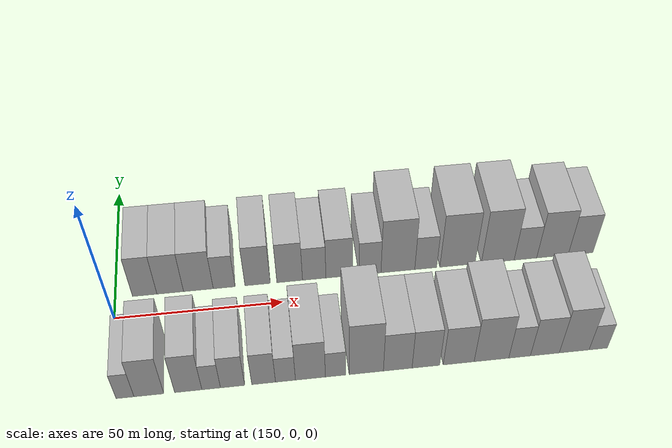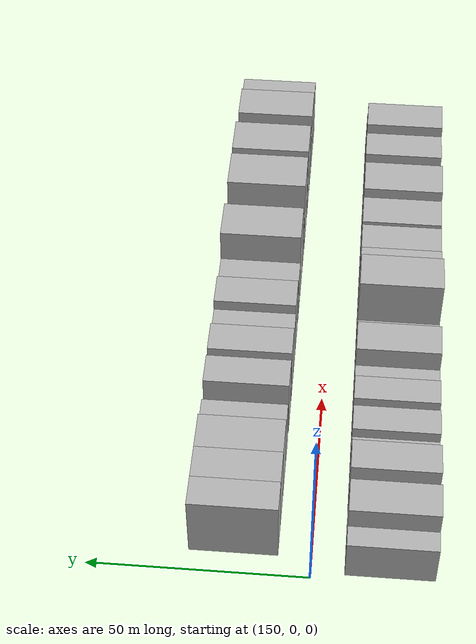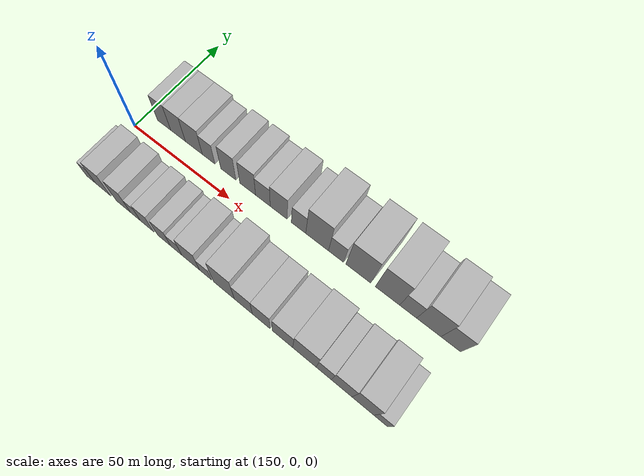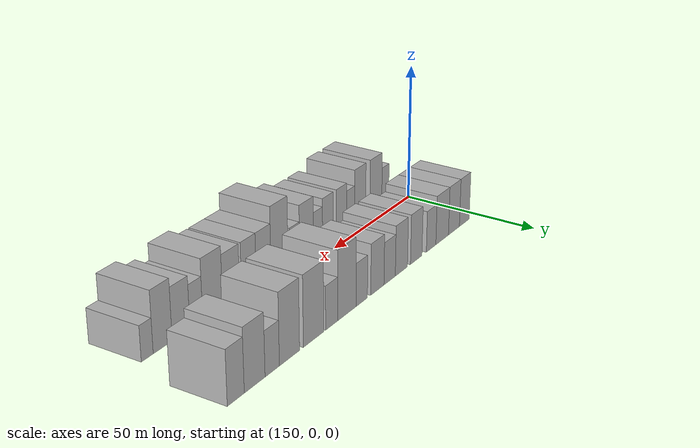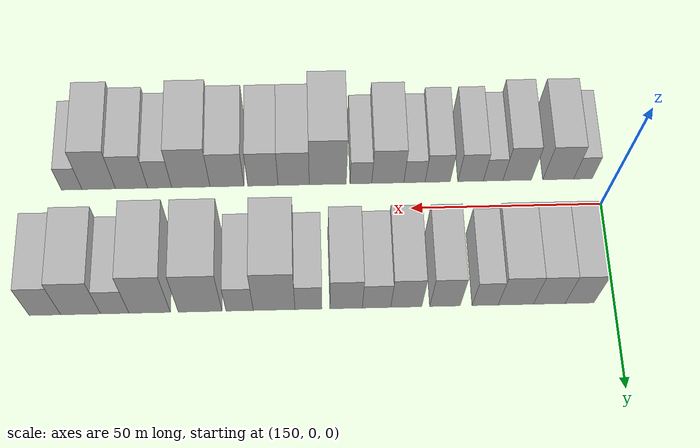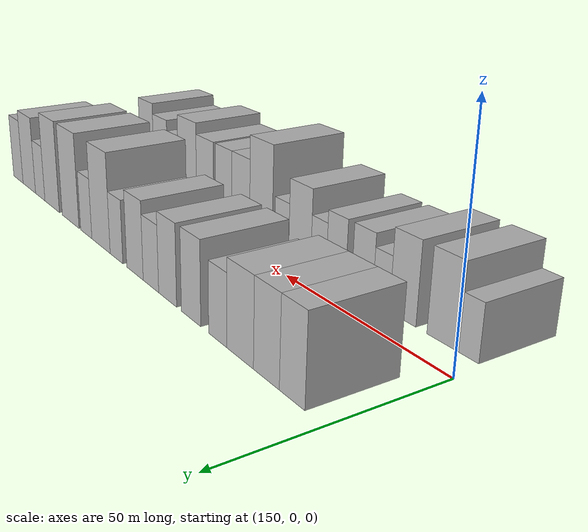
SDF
<sdf version="1.6">
 <world name="default">
  <model name="building_17">
   <static>1</static>
   <pose>158.8325 17.5000 0 0.000000 0.000000 1.570796</pose>
   <link name="link">
    <pose>0 0 9.00 0 0 0</pose>
    <collision name="collision"><geometry><box><size>20.0000 7.3114 18.0000</size></box></geometry></collision>
    <visual name="visual">
     <cast_shadows>0</cast_shadows>
     <geometry><box><size>20.0000 7.3114 18.0000</size></box></geometry>
     <material>
      <script>
       <uri>model://HANNAS_wall/materials/scripts</uri>
       <uri>model://HANNAS_wall/materials/textures</uri>
       <name>vrc/HANNAS_wall</name>
      </script>
     </material>
    </visual>
   </link>
  </model>
  <model name="building_18">
   <static>1</static>
   <pose>166.4875 17.5000 0 0.000000 0.000000 1.570796</pose>
   <link name="link">
    <pose>0 0 9.00 0 0 0</pose>
    <collision name="collision"><geometry><box><size>20.0000 7.9986 18.0000</size></box></geometry></collision>
    <visual name="visual">
     <cast_shadows>0</cast_shadows>
     <geometry><box><size>20.0000 7.9986 18.0000</size></box></geometry>
     <material>
      <script>
       <uri>model://HANNAS_wall/materials/scripts</uri>
       <uri>model://HANNAS_wall/materials/textures</uri>
       <name>vrc/HANNAS_wall</name>
      </script>
     </material>
    </visual>
   </link>
  </model>
  <model name="building_19">
   <static>1</static>
   <pose>174.9716 17.5000 0 0.000000 0.000000 1.570796</pose>
   <link name="link">
    <pose>0 0 9.00 0 0 0</pose>
    <collision name="collision"><geometry><box><size>20.0000 8.9696 18.0000</size></box></geometry></collision>
    <visual name="visual">
     <cast_shadows>0</cast_shadows>
     <geometry><box><size>20.0000 8.9696 18.0000</size></box></geometry>
     <material>
      <script>
       <uri>model://HANNAS_wall/materials/scripts</uri>
       <uri>model://HANNAS_wall/materials/textures</uri>
       <name>vrc/HANNAS_wall</name>
      </script>
     </material>
    </visual>
   </link>
  </model>
  <model name="building_20">
   <static>1</static>
   <pose>182.7605 17.5000 0 0.000000 0.000000 1.570796</pose>
   <link name="link">
    <pose>0 0 7.50 0 0 0</pose>
    <collision name="collision"><geometry><box><size>20.0000 6.6081 15.0000</size></box></geometry></collision>
    <visual name="visual">
     <cast_shadows>0</cast_shadows>
     <geometry><box><size>20.0000 6.6081 15.0000</size></box></geometry>
     <material>
      <script>
       <uri>model://HANNAS_wall/materials/scripts</uri>
       <uri>model://HANNAS_wall/materials/textures</uri>
       <name>vrc/HANNAS_wall</name>
      </script>
     </material>
    </visual>
   </link>
  </model>
  <model name="building_21">
   <static>1</static>
   <pose>192.9308 17.5000 0 0.000000 0.000000 1.570796</pose>
   <link name="link">
    <pose>0 0 9.00 0 0 0</pose>
    <collision name="collision"><geometry><box><size>20.0000 7.7326 18.0000</size></box></geometry></collision>
    <visual name="visual">
     <cast_shadows>0</cast_shadows>
     <geometry><box><size>20.0000 7.7326 18.0000</size></box></geometry>
     <material>
      <script>
       <uri>model://HANNAS_wall/materials/scripts</uri>
       <uri>model://HANNAS_wall/materials/textures</uri>
       <name>vrc/HANNAS_wall</name>
      </script>
     </material>
    </visual>
   </link>
  </model>
  <model name="building_22">
   <static>1</static>
   <pose>202.7216 17.5000 0 0.000000 0.000000 1.570796</pose>
   <link name="link">
    <pose>0 0 9.00 0 0 0</pose>
    <collision name="collision"><geometry><box><size>20.0000 7.8489 18.0000</size></box></geometry></collision>
    <visual name="visual">
     <cast_shadows>0</cast_shadows>
     <geometry><box><size>20.0000 7.8489 18.0000</size></box></geometry>
     <material>
      <script>
       <uri>model://HANNAS_wall/materials/scripts</uri>
       <uri>model://HANNAS_wall/materials/textures</uri>
       <name>vrc/HANNAS_wall</name>
      </script>
     </material>
    </visual>
   </link>
  </model>
  <model name="building_23">
   <static>1</static>
   <pose>210.2408 17.5000 0 0.000000 0.000000 1.570796</pose>
   <link name="link">
    <pose>0 0 7.50 0 0 0</pose>
    <collision name="collision"><geometry><box><size>20.0000 7.1895 15.0000</size></box></geometry></collision>
    <visual name="visual">
     <cast_shadows>0</cast_shadows>
     <geometry><box><size>20.0000 7.1895 15.0000</size></box></geometry>
     <material>
      <script>
       <uri>model://HANNAS_wall/materials/scripts</uri>
       <uri>model://HANNAS_wall/materials/textures</uri>
       <name>vrc/HANNAS_wall</name>
      </script>
     </material>
    </visual>
   </link>
  </model>
  <model name="building_24">
   <static>1</static>
   <pose>217.9297 17.5000 0 0.000000 0.000000 1.570796</pose>
   <link name="link">
    <pose>0 0 9.00 0 0 0</pose>
    <collision name="collision"><geometry><box><size>20.0000 8.1882 18.0000</size></box></geometry></collision>
    <visual name="visual">
     <cast_shadows>0</cast_shadows>
     <geometry><box><size>20.0000 8.1882 18.0000</size></box></geometry>
     <material>
      <script>
       <uri>model://HANNAS_wall/materials/scripts</uri>
       <uri>model://HANNAS_wall/materials/textures</uri>
       <name>vrc/HANNAS_wall</name>
      </script>
     </material>
    </visual>
   </link>
  </model>
  <model name="building_25">
   <static>1</static>
   <pose>227.4332 17.5000 0 0.000000 0.000000 1.570796</pose>
   <link name="link">
    <pose>0 0 7.50 0 0 0</pose>
    <collision name="collision"><geometry><box><size>20.0000 6.8190 15.0000</size></box></geometry></collision>
    <visual name="visual">
     <cast_shadows>0</cast_shadows>
     <geometry><box><size>20.0000 6.8190 15.0000</size></box></geometry>
     <material>
      <script>
       <uri>model://HANNAS_wall/materials/scripts</uri>
       <uri>model://HANNAS_wall/materials/textures</uri>
       <name>vrc/HANNAS_wall</name>
      </script>
     </material>
    </visual>
   </link>
  </model>
  <model name="building_26">
   <static>1</static>
   <pose>236.1009 17.5000 0 0.000000 0.000000 1.570796</pose>
   <link name="link">
    <pose>0 0 12.00 0 0 0</pose>
    <collision name="collision"><geometry><box><size>20.0000 10.5164 24.0000</size></box></geometry></collision>
    <visual name="visual">
     <cast_shadows>0</cast_shadows>
     <geometry><box><size>20.0000 10.5164 24.0000</size></box></geometry>
     <material>
      <script>
       <uri>model://HANNAS_wall/materials/scripts</uri>
       <uri>model://HANNAS_wall/materials/textures</uri>
       <name>vrc/HANNAS_wall</name>
      </script>
     </material>
    </visual>
   </link>
  </model>
  <model name="building_27">
   <static>1</static>
   <pose>244.7884 17.5000 0 0.000000 0.000000 1.570796</pose>
   <link name="link">
    <pose>0 0 7.50 0 0 0</pose>
    <collision name="collision"><geometry><box><size>20.0000 6.8587 15.0000</size></box></geometry></collision>
    <visual name="visual">
     <cast_shadows>0</cast_shadows>
     <geometry><box><size>20.0000 6.8587 15.0000</size></box></geometry>
     <material>
      <script>
       <uri>model://HANNAS_wall/materials/scripts</uri>
       <uri>model://HANNAS_wall/materials/textures</uri>
       <name>vrc/HANNAS_wall</name>
      </script>
     </material>
    </visual>
   </link>
  </model>
  <model name="building_28">
   <static>1</static>
   <pose>254.7375 17.5000 0 0.000000 0.000000 1.570796</pose>
   <link name="link">
    <pose>0 0 12.00 0 0 0</pose>
    <collision name="collision"><geometry><box><size>20.0000 11.0396 24.0000</size></box></geometry></collision>
    <visual name="visual">
     <cast_shadows>0</cast_shadows>
     <geometry><box><size>20.0000 11.0396 24.0000</size></box></geometry>
     <material>
      <script>
       <uri>model://HANNAS_wall/materials/scripts</uri>
       <uri>model://HANNAS_wall/materials/textures</uri>
       <name>vrc/HANNAS_wall</name>
      </script>
     </material>
    </visual>
   </link>
  </model>
  <model name="building_29">
   <static>1</static>
   <pose>267.4569 17.5000 0 0.000000 0.000000 1.570796</pose>
   <link name="link">
    <pose>0 0 12.00 0 0 0</pose>
    <collision name="collision"><geometry><box><size>20.0000 10.3992 24.0000</size></box></geometry></collision>
    <visual name="visual">
     <cast_shadows>0</cast_shadows>
     <geometry><box><size>20.0000 10.3992 24.0000</size></box></geometry>
     <material>
      <script>
       <uri>model://HANNAS_wall/materials/scripts</uri>
       <uri>model://HANNAS_wall/materials/textures</uri>
       <name>vrc/HANNAS_wall</name>
      </script>
     </material>
    </visual>
   </link>
  </model>
  <model name="building_30">
   <static>1</static>
   <pose>276.2368 17.5000 0 0.000000 0.000000 1.570796</pose>
   <link name="link">
    <pose>0 0 7.50 0 0 0</pose>
    <collision name="collision"><geometry><box><size>20.0000 7.1605 15.0000</size></box></geometry></collision>
    <visual name="visual">
     <cast_shadows>0</cast_shadows>
     <geometry><box><size>20.0000 7.1605 15.0000</size></box></geometry>
     <material>
      <script>
       <uri>model://HANNAS_wall/materials/scripts</uri>
       <uri>model://HANNAS_wall/materials/textures</uri>
       <name>vrc/HANNAS_wall</name>
      </script>
     </material>
    </visual>
   </link>
  </model>
  <model name="building_31">
   <static>1</static>
   <pose>284.8316 17.5000 0 0.000000 0.000000 1.570796</pose>
   <link name="link">
    <pose>0 0 10.50 0 0 0</pose>
    <collision name="collision"><geometry><box><size>20.0000 10.0290 21.0000</size></box></geometry></collision>
    <visual name="visual">
     <cast_shadows>0</cast_shadows>
     <geometry><box><size>20.0000 10.0290 21.0000</size></box></geometry>
     <material>
      <script>
       <uri>model://HANNAS_wall/materials/scripts</uri>
       <uri>model://HANNAS_wall/materials/textures</uri>
       <name>vrc/HANNAS_wall</name>
      </script>
     </material>
    </visual>
   </link>
  </model>
  <model name="building_32">
   <static>1</static>
   <pose>293.8147 17.5000 0 0.000000 0.000000 1.570796</pose>
   <link name="link">
    <pose>0 0 9.00 0 0 0</pose>
    <collision name="collision"><geometry><box><size>20.0000 7.9373 18.0000</size></box></geometry></collision>
    <visual name="visual">
     <cast_shadows>0</cast_shadows>
     <geometry><box><size>20.0000 7.9373 18.0000</size></box></geometry>
     <material>
      <script>
       <uri>model://HANNAS_wall/materials/scripts</uri>
       <uri>model://HANNAS_wall/materials/textures</uri>
       <name>vrc/HANNAS_wall</name>
      </script>
     </material>
    </visual>
   </link>
  </model>
  <model name="building_49">
   <static>1</static>
   <pose>153.8694 -17.5000 0 0.000000 0.000000 1.570796</pose>
   <link name="link">
    <pose>0 0 6.00 0 0 0</pose>
    <collision name="collision"><geometry><box><size>20.0000 4.9584 12.0000</size></box></geometry></collision>
    <visual name="visual">
     <cast_shadows>0</cast_shadows>
     <geometry><box><size>20.0000 4.9584 12.0000</size></box></geometry>
     <material>
      <script>
       <uri>model://HANNAS_wall/materials/scripts</uri>
       <uri>model://HANNAS_wall/materials/textures</uri>
       <name>vrc/HANNAS_wall</name>
      </script>
     </material>
    </visual>
   </link>
  </model>
  <model name="building_50">
   <static>1</static>
   <pose>160.4737 -17.5000 0 0.000000 0.000000 1.570796</pose>
   <link name="link">
    <pose>0 0 9.00 0 0 0</pose>
    <collision name="collision"><geometry><box><size>20.0000 8.2502 18.0000</size></box></geometry></collision>
    <visual name="visual">
     <cast_shadows>0</cast_shadows>
     <geometry><box><size>20.0000 8.2502 18.0000</size></box></geometry>
     <material>
      <script>
       <uri>model://HANNAS_wall/materials/scripts</uri>
       <uri>model://HANNAS_wall/materials/textures</uri>
       <name>vrc/HANNAS_wall</name>
      </script>
     </material>
    </visual>
   </link>
  </model>
  <model name="building_51">
   <static>1</static>
   <pose>171.4000 -17.5000 0 0.000000 0.000000 1.570796</pose>
   <link name="link">
    <pose>0 0 9.00 0 0 0</pose>
    <collision name="collision"><geometry><box><size>20.0000 7.6023 18.0000</size></box></geometry></collision>
    <visual name="visual">
     <cast_shadows>0</cast_shadows>
     <geometry><box><size>20.0000 7.6023 18.0000</size></box></geometry>
     <material>
      <script>
       <uri>model://HANNAS_wall/materials/scripts</uri>
       <uri>model://HANNAS_wall/materials/textures</uri>
       <name>vrc/HANNAS_wall</name>
      </script>
     </material>
    </visual>
   </link>
  </model>
  <model name="building_52">
   <static>1</static>
   <pose>177.7987 -17.5000 0 0.000000 0.000000 1.570796</pose>
   <link name="link">
    <pose>0 0 6.00 0 0 0</pose>
    <collision name="collision"><geometry><box><size>20.0000 5.1952 12.0000</size></box></geometry></collision>
    <visual name="visual">
     <cast_shadows>0</cast_shadows>
     <geometry><box><size>20.0000 5.1952 12.0000</size></box></geometry>
     <material>
      <script>
       <uri>model://HANNAS_wall/materials/scripts</uri>
       <uri>model://HANNAS_wall/materials/textures</uri>
       <name>vrc/HANNAS_wall</name>
      </script>
     </material>
    </visual>
   </link>
  </model>
  <model name="building_53">
   <static>1</static>
   <pose>183.7909 -17.5000 0 0.000000 0.000000 1.570796</pose>
   <link name="link">
    <pose>0 0 7.50 0 0 0</pose>
    <collision name="collision"><geometry><box><size>20.0000 6.7891 15.0000</size></box></geometry></collision>
    <visual name="visual">
     <cast_shadows>0</cast_shadows>
     <geometry><box><size>20.0000 6.7891 15.0000</size></box></geometry>
     <material>
      <script>
       <uri>model://HANNAS_wall/materials/scripts</uri>
       <uri>model://HANNAS_wall/materials/textures</uri>
       <name>vrc/HANNAS_wall</name>
      </script>
     </material>
    </visual>
   </link>
  </model>
  <model name="building_54">
   <static>1</static>
   <pose>192.5304 -17.5000 0 0.000000 0.000000 1.570796</pose>
   <link name="link">
    <pose>0 0 7.50 0 0 0</pose>
    <collision name="collision"><geometry><box><size>20.0000 6.6899 15.0000</size></box></geometry></collision>
    <visual name="visual">
     <cast_shadows>0</cast_shadows>
     <geometry><box><size>20.0000 6.6899 15.0000</size></box></geometry>
     <material>
      <script>
       <uri>model://HANNAS_wall/materials/scripts</uri>
       <uri>model://HANNAS_wall/materials/textures</uri>
       <name>vrc/HANNAS_wall</name>
      </script>
     </material>
    </visual>
   </link>
  </model>
  <model name="building_55">
   <static>1</static>
   <pose>198.6888 -17.5000 0 0.000000 0.000000 1.570796</pose>
   <link name="link">
    <pose>0 0 6.00 0 0 0</pose>
    <collision name="collision"><geometry><box><size>20.0000 5.6268 12.0000</size></box></geometry></collision>
    <visual name="visual">
     <cast_shadows>0</cast_shadows>
     <geometry><box><size>20.0000 5.6268 12.0000</size></box></geometry>
     <material>
      <script>
       <uri>model://HANNAS_wall/materials/scripts</uri>
       <uri>model://HANNAS_wall/materials/textures</uri>
       <name>vrc/HANNAS_wall</name>
      </script>
     </material>
    </visual>
   </link>
  </model>
  <model name="building_56">
   <static>1</static>
   <pose>205.7583 -17.5000 0 0.000000 0.000000 1.570796</pose>
   <link name="link">
    <pose>0 0 9.00 0 0 0</pose>
    <collision name="collision"><geometry><box><size>20.0000 8.5123 18.0000</size></box></geometry></collision>
    <visual name="visual">
     <cast_shadows>0</cast_shadows>
     <geometry><box><size>20.0000 8.5123 18.0000</size></box></geometry>
     <material>
      <script>
       <uri>model://HANNAS_wall/materials/scripts</uri>
       <uri>model://HANNAS_wall/materials/textures</uri>
       <name>vrc/HANNAS_wall</name>
      </script>
     </material>
    </visual>
   </link>
  </model>
  <model name="building_57">
   <static>1</static>
   <pose>212.8949 -17.5000 0 0.000000 0.000000 1.570796</pose>
   <link name="link">
    <pose>0 0 6.00 0 0 0</pose>
    <collision name="collision"><geometry><box><size>20.0000 5.7610 12.0000</size></box></geometry></collision>
    <visual name="visual">
     <cast_shadows>0</cast_shadows>
     <geometry><box><size>20.0000 5.7610 12.0000</size></box></geometry>
     <material>
      <script>
       <uri>model://HANNAS_wall/materials/scripts</uri>
       <uri>model://HANNAS_wall/materials/textures</uri>
       <name>vrc/HANNAS_wall</name>
      </script>
     </material>
    </visual>
   </link>
  </model>
  <model name="building_58">
   <static>1</static>
   <pose>221.6780 -17.5000 0 0.000000 0.000000 1.570796</pose>
   <link name="link">
    <pose>0 0 12.00 0 0 0</pose>
    <collision name="collision"><geometry><box><size>20.0000 9.8051 24.0000</size></box></geometry></collision>
    <visual name="visual">
     <cast_shadows>0</cast_shadows>
     <geometry><box><size>20.0000 9.8051 24.0000</size></box></geometry>
     <material>
      <script>
       <uri>model://HANNAS_wall/materials/scripts</uri>
       <uri>model://HANNAS_wall/materials/textures</uri>
       <name>vrc/HANNAS_wall</name>
      </script>
     </material>
    </visual>
   </link>
  </model>
  <model name="building_59">
   <static>1</static>
   <pose>230.7055 -17.5000 0 0.000000 0.000000 1.570796</pose>
   <link name="link">
    <pose>0 0 9.00 0 0 0</pose>
    <collision name="collision"><geometry><box><size>20.0000 8.2501 18.0000</size></box></geometry></collision>
    <visual name="visual">
     <cast_shadows>0</cast_shadows>
     <geometry><box><size>20.0000 8.2501 18.0000</size></box></geometry>
     <material>
      <script>
       <uri>model://HANNAS_wall/materials/scripts</uri>
       <uri>model://HANNAS_wall/materials/textures</uri>
       <name>vrc/HANNAS_wall</name>
      </script>
     </material>
    </visual>
   </link>
  </model>
  <model name="building_60">
   <static>1</static>
   <pose>238.8311 -17.5000 0 0.000000 0.000000 1.570796</pose>
   <link name="link">
    <pose>0 0 9.00 0 0 0</pose>
    <collision name="collision"><geometry><box><size>20.0000 8.0010 18.0000</size></box></geometry></collision>
    <visual name="visual">
     <cast_shadows>0</cast_shadows>
     <geometry><box><size>20.0000 8.0010 18.0000</size></box></geometry>
     <material>
      <script>
       <uri>model://HANNAS_wall/materials/scripts</uri>
       <uri>model://HANNAS_wall/materials/textures</uri>
       <name>vrc/HANNAS_wall</name>
      </script>
     </material>
    </visual>
   </link>
  </model>
  <model name="building_61">
   <static>1</static>
   <pose>248.3233 -17.5000 0 0.000000 0.000000 1.570796</pose>
   <link name="link">
    <pose>0 0 9.00 0 0 0</pose>
    <collision name="collision"><geometry><box><size>20.0000 8.9833 18.0000</size></box></geometry></collision>
    <visual name="visual">
     <cast_shadows>0</cast_shadows>
     <geometry><box><size>20.0000 8.9833 18.0000</size></box></geometry>
     <material>
      <script>
       <uri>model://HANNAS_wall/materials/scripts</uri>
       <uri>model://HANNAS_wall/materials/textures</uri>
       <name>vrc/HANNAS_wall</name>
      </script>
     </material>
    </visual>
   </link>
  </model>
  <model name="building_62">
   <static>1</static>
   <pose>257.8801 -17.5000 0 0.000000 0.000000 1.570796</pose>
   <link name="link">
    <pose>0 0 10.50 0 0 0</pose>
    <collision name="collision"><geometry><box><size>20.0000 10.1304 21.0000</size></box></geometry></collision>
    <visual name="visual">
     <cast_shadows>0</cast_shadows>
     <geometry><box><size>20.0000 10.1304 21.0000</size></box></geometry>
     <material>
      <script>
       <uri>model://HANNAS_wall/materials/scripts</uri>
       <uri>model://HANNAS_wall/materials/textures</uri>
       <name>vrc/HANNAS_wall</name>
      </script>
     </material>
    </visual>
   </link>
  </model>
  <model name="building_63">
   <static>1</static>
   <pose>266.1226 -17.5000 0 0.000000 0.000000 1.570796</pose>
   <link name="link">
    <pose>0 0 7.50 0 0 0</pose>
    <collision name="collision"><geometry><box><size>20.0000 6.3545 15.0000</size></box></geometry></collision>
    <visual name="visual">
     <cast_shadows>0</cast_shadows>
     <geometry><box><size>20.0000 6.3545 15.0000</size></box></geometry>
     <material>
      <script>
       <uri>model://HANNAS_wall/materials/scripts</uri>
       <uri>model://HANNAS_wall/materials/textures</uri>
       <name>vrc/HANNAS_wall</name>
      </script>
     </material>
    </visual>
   </link>
  </model>
  <model name="building_64">
   <static>1</static>
   <pose>273.5532 -17.5000 0 0.000000 0.000000 1.570796</pose>
   <link name="link">
    <pose>0 0 9.00 0 0 0</pose>
    <collision name="collision"><geometry><box><size>20.0000 8.5069 18.0000</size></box></geometry></collision>
    <visual name="visual">
     <cast_shadows>0</cast_shadows>
     <geometry><box><size>20.0000 8.5069 18.0000</size></box></geometry>
     <material>
      <script>
       <uri>model://HANNAS_wall/materials/scripts</uri>
       <uri>model://HANNAS_wall/materials/textures</uri>
       <name>vrc/HANNAS_wall</name>
      </script>
     </material>
    </visual>
   </link>
  </model>
  <model name="building_65">
   <static>1</static>
   <pose>282.2309 -17.5000 0 0.000000 0.000000 1.570796</pose>
   <link name="link">
    <pose>0 0 10.50 0 0 0</pose>
    <collision name="collision"><geometry><box><size>20.0000 8.8484 21.0000</size></box></geometry></collision>
    <visual name="visual">
     <cast_shadows>0</cast_shadows>
     <geometry><box><size>20.0000 8.8484 21.0000</size></box></geometry>
     <material>
      <script>
       <uri>model://HANNAS_wall/materials/scripts</uri>
       <uri>model://HANNAS_wall/materials/textures</uri>
       <name>vrc/HANNAS_wall</name>
      </script>
     </material>
    </visual>
   </link>
  </model>
  <model name="building_66">
   <static>1</static>
   <pose>289.3684 -17.5000 0 0.000000 0.000000 1.570796</pose>
   <link name="link">
    <pose>0 0 6.00 0 0 0</pose>
    <collision name="collision"><geometry><box><size>20.0000 5.4266 12.0000</size></box></geometry></collision>
    <visual name="visual">
     <cast_shadows>0</cast_shadows>
     <geometry><box><size>20.0000 5.4266 12.0000</size></box></geometry>
     <material>
      <script>
       <uri>model://HANNAS_wall/materials/scripts</uri>
       <uri>model://HANNAS_wall/materials/textures</uri>
       <name>vrc/HANNAS_wall</name>
      </script>
     </material>
    </visual>
   </link>
  </model>
 </world>
</sdf>
